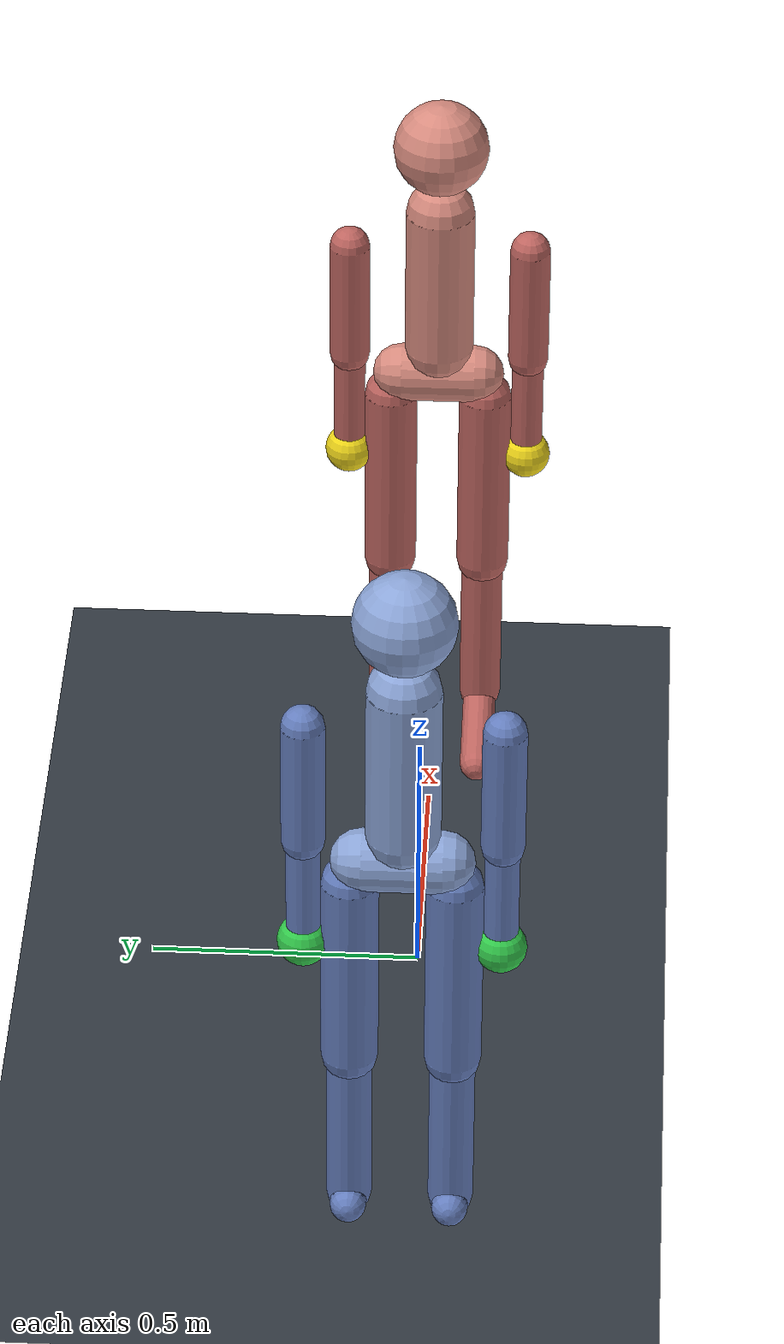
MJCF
<mujoco model="boxing">

  <compiler angle="radian" inertiafromgeom="true"/>

  <option timestep="0.005" gravity="0 0 -9.81" iterations="50" solver="PGS" cone="pyramidal"/>

  <default>
    <joint limited="true" armature="0.02" damping="1.5" stiffness="0"/>
    <geom condim="3" friction="0.8 0.1 0.1" density="1000"/>
    <position ctrllimited="true" ctrlrange="-1 1" kp="200"/>
  </default>

  <asset>
    <texture name="texplane" type="2d" builtin="checker"
             rgb1="0.25 0.28 0.32" rgb2="0.15 0.17 0.20"
             width="512" height="512"/>
    <material name="matplane" texture="texplane" texrepeat="6 6"
              reflectance="0.15" shininess="0.1"/>
    <!-- Fighter 0: blue tones -->
    <material name="mat_b0_skin"  rgba="0.55 0.65 0.85 1"/>
    <material name="mat_b0_limb"  rgba="0.40 0.50 0.75 1"/>
    <material name="mat_b0_fist"  rgba="0.20 0.80 0.30 1"/>
    <!-- Fighter 1: red tones -->
    <material name="mat_b1_skin"  rgba="0.85 0.55 0.50 1"/>
    <material name="mat_b1_limb"  rgba="0.75 0.40 0.38 1"/>
    <material name="mat_b1_fist"  rgba="0.95 0.85 0.10 1"/>
  </asset>

  <worldbody>
    <light directional="true" pos="-2 0 4" dir="1 0 -2" diffuse="0.8 0.8 0.8"/>
    <light directional="true" pos=" 2 0 4" dir="-1 0 -2" diffuse="0.6 0.6 0.7"/>
    <light pos="0 0 3" diffuse="0.4 0.4 0.4" castshadow="false"/>

    <geom name="floor" type="plane" pos="0 0 0" size="8 8 0.1"
          material="matplane" condim="3" friction="0.9 0.1 0.1"/>

    <!--  FIGHTER 0  –  starts at x=-0.75, facing +x           -->
    <body name="b0_pelvis" pos="-0.75 0 0.83">
      <freejoint name="b0_root"/>
      <geom name="b0_pelvis_geom" type="capsule"
            fromto="0 -0.07 0 0 0.07 0" size="0.055"
            material="mat_b0_skin"/>

      <!-- ── TORSO ── -->
      <body name="b0_torso" pos="0 0 0.20">
        <joint name="b0_abdomen_y" type="hinge" axis="0 1 0"
               pos="0 0 -0.10" range="-0.6 0.6"/>
        <geom name="b0_torso_geom" type="capsule"
              fromto="0 0 -0.14 0 0 0.16" size="0.065"
              material="mat_b0_skin"/>

        <!-- HEAD -->
        <body name="b0_head" pos="0 0 0.30">
          <geom name="b0_head_geom" type="sphere" size="0.09"
                material="mat_b0_skin"/>
        </body>

        <!-- ── LEFT ARM (fighter's left = global +y side) ── -->
        <body name="b0_left_upper_arm" pos="0 0.17 0.08">
          <joint name="b0_left_shoulder_x" type="hinge" axis="1 0 0"
                 range="-1.8 1.8"/>
          <joint name="b0_left_shoulder_y" type="hinge" axis="0 1 0"
                 range="-1.8 1.8"/>
          <joint name="b0_left_shoulder_z" type="hinge" axis="0 0 1"
                 range="-1.2 1.2"/>
          <geom name="b0_left_upper_arm_geom" type="capsule"
                fromto="0 0 0 0 0 -0.24" size="0.038"
                material="mat_b0_limb"/>

          <body name="b0_left_lower_arm" pos="0 0 -0.24">
            <joint name="b0_left_elbow" type="hinge" axis="0 1 0"
                   range="-2.6 0.0"/>
            <geom name="b0_left_lower_arm_geom" type="capsule"
                  fromto="0 0 0 0 0 -0.20" size="0.030"
                  material="mat_b0_limb"/>

            <body name="b0_left_fist" pos="0 0 -0.22">
              <geom name="b0_left_fist_geom" type="sphere" size="0.046"
                    material="mat_b0_fist"/>
            </body>
          </body>
        </body>

        <!-- ── RIGHT ARM (fighter's right = global -y side) ── -->
        <body name="b0_right_upper_arm" pos="0 -0.17 0.08">
          <joint name="b0_right_shoulder_x" type="hinge" axis="1 0 0"
                 range="-1.8 1.8"/>
          <joint name="b0_right_shoulder_y" type="hinge" axis="0 1 0"
                 range="-1.8 1.8"/>
          <joint name="b0_right_shoulder_z" type="hinge" axis="0 0 1"
                 range="-1.2 1.2"/>
          <geom name="b0_right_upper_arm_geom" type="capsule"
                fromto="0 0 0 0 0 -0.24" size="0.038"
                material="mat_b0_limb"/>

          <body name="b0_right_lower_arm" pos="0 0 -0.24">
            <joint name="b0_right_elbow" type="hinge" axis="0 1 0"
                   range="-2.6 0.0"/>
            <geom name="b0_right_lower_arm_geom" type="capsule"
                  fromto="0 0 0 0 0 -0.20" size="0.030"
                  material="mat_b0_limb"/>

            <body name="b0_right_fist" pos="0 0 -0.22">
              <geom name="b0_right_fist_geom" type="sphere" size="0.046"
                    material="mat_b0_fist"/>
            </body>
          </body>
        </body>
      </body><!-- /b0_torso -->

      <!-- ── LEFT LEG ── -->
      <body name="b0_left_thigh" pos="0 0.09 -0.05">
        <joint name="b0_left_hip_x" type="hinge" axis="1 0 0"
               range="-0.6 0.6"/>
        <joint name="b0_left_hip_y" type="hinge" axis="0 1 0"
               range="-1.2 0.9"/>
        <joint name="b0_left_hip_z" type="hinge" axis="0 0 1"
               range="-0.6 0.6"/>
        <geom name="b0_left_thigh_geom" type="capsule"
              fromto="0 0 0 0 0 -0.38" size="0.050"
              material="mat_b0_limb"/>

        <body name="b0_left_shin" pos="0 0 -0.38">
          <joint name="b0_left_knee" type="hinge" axis="0 1 0"
                 range="-2.0 0.05"/>
          <geom name="b0_left_shin_geom" type="capsule"
                fromto="0 0 0 0 0 -0.32" size="0.040"
                material="mat_b0_limb"/>

          <body name="b0_left_foot" pos="0 0 -0.32">
            <joint name="b0_left_ankle_x" type="hinge" axis="1 0 0"
                   range="-0.6 0.6"/>
            <joint name="b0_left_ankle_y" type="hinge" axis="0 1 0"
                   range="-0.8 0.6"/>
            <geom name="b0_left_foot_geom" type="capsule"
                  fromto="-0.04 0 0 0.18 0 -0.05" size="0.032"
                  material="mat_b0_limb"/>
          </body>
        </body>
      </body>

      <!-- ── RIGHT LEG ── -->
      <body name="b0_right_thigh" pos="0 -0.09 -0.05">
        <joint name="b0_right_hip_x" type="hinge" axis="1 0 0"
               range="-0.6 0.6"/>
        <joint name="b0_right_hip_y" type="hinge" axis="0 1 0"
               range="-1.2 0.9"/>
        <joint name="b0_right_hip_z" type="hinge" axis="0 0 1"
               range="-0.6 0.6"/>
        <geom name="b0_right_thigh_geom" type="capsule"
              fromto="0 0 0 0 0 -0.38" size="0.050"
              material="mat_b0_limb"/>

        <body name="b0_right_shin" pos="0 0 -0.38">
          <joint name="b0_right_knee" type="hinge" axis="0 1 0"
                 range="-2.0 0.05"/>
          <geom name="b0_right_shin_geom" type="capsule"
                fromto="0 0 0 0 0 -0.32" size="0.040"
                material="mat_b0_limb"/>

          <body name="b0_right_foot" pos="0 0 -0.32">
            <joint name="b0_right_ankle_x" type="hinge" axis="1 0 0"
                   range="-0.6 0.6"/>
            <joint name="b0_right_ankle_y" type="hinge" axis="0 1 0"
                   range="-0.8 0.6"/>
            <geom name="b0_right_foot_geom" type="capsule"
                  fromto="-0.04 0 0 0.18 0 -0.05" size="0.032"
                  material="mat_b0_limb"/>
          </body>
        </body>
      </body>
    </body><!-- /b0_pelvis -->

    <!--  FIGHTER 1  –  starts at x=+0.75, facing -x (180° z) -->
    <body name="b1_pelvis" pos="0.75 0 0.83" euler="0 0 3.14159265">
      <freejoint name="b1_root"/>
      <geom name="b1_pelvis_geom" type="capsule"
            fromto="0 -0.07 0 0 0.07 0" size="0.055"
            material="mat_b1_skin"/>

      <!-- ── TORSO ── -->
      <body name="b1_torso" pos="0 0 0.20">
        <joint name="b1_abdomen_y" type="hinge" axis="0 1 0"
               pos="0 0 -0.10" range="-0.6 0.6"/>
        <geom name="b1_torso_geom" type="capsule"
              fromto="0 0 -0.14 0 0 0.16" size="0.065"
              material="mat_b1_skin"/>

        <!-- HEAD -->
        <body name="b1_head" pos="0 0 0.30">
          <geom name="b1_head_geom" type="sphere" size="0.09"
                material="mat_b1_skin"/>
        </body>

        <!-- ── LEFT ARM ── -->
        <body name="b1_left_upper_arm" pos="0 0.17 0.08">
          <joint name="b1_left_shoulder_x" type="hinge" axis="1 0 0"
                 range="-1.8 1.8"/>
          <joint name="b1_left_shoulder_y" type="hinge" axis="0 1 0"
                 range="-1.8 1.8"/>
          <joint name="b1_left_shoulder_z" type="hinge" axis="0 0 1"
                 range="-1.2 1.2"/>
          <geom name="b1_left_upper_arm_geom" type="capsule"
                fromto="0 0 0 0 0 -0.24" size="0.038"
                material="mat_b1_limb"/>

          <body name="b1_left_lower_arm" pos="0 0 -0.24">
            <joint name="b1_left_elbow" type="hinge" axis="0 1 0"
                   range="-2.6 0.0"/>
            <geom name="b1_left_lower_arm_geom" type="capsule"
                  fromto="0 0 0 0 0 -0.20" size="0.030"
                  material="mat_b1_limb"/>

            <body name="b1_left_fist" pos="0 0 -0.22">
              <geom name="b1_left_fist_geom" type="sphere" size="0.046"
                    material="mat_b1_fist"/>
            </body>
          </body>
        </body>

        <!-- ── RIGHT ARM ── -->
        <body name="b1_right_upper_arm" pos="0 -0.17 0.08">
          <joint name="b1_right_shoulder_x" type="hinge" axis="1 0 0"
                 range="-1.8 1.8"/>
          <joint name="b1_right_shoulder_y" type="hinge" axis="0 1 0"
                 range="-1.8 1.8"/>
          <joint name="b1_right_shoulder_z" type="hinge" axis="0 0 1"
                 range="-1.2 1.2"/>
          <geom name="b1_right_upper_arm_geom" type="capsule"
                fromto="0 0 0 0 0 -0.24" size="0.038"
                material="mat_b1_limb"/>

          <body name="b1_right_lower_arm" pos="0 0 -0.24">
            <joint name="b1_right_elbow" type="hinge" axis="0 1 0"
                   range="-2.6 0.0"/>
            <geom name="b1_right_lower_arm_geom" type="capsule"
                  fromto="0 0 0 0 0 -0.20" size="0.030"
                  material="mat_b1_limb"/>

            <body name="b1_right_fist" pos="0 0 -0.22">
              <geom name="b1_right_fist_geom" type="sphere" size="0.046"
                    material="mat_b1_fist"/>
            </body>
          </body>
        </body>
      </body><!-- /b1_torso -->

      <!-- ── LEFT LEG ── -->
      <body name="b1_left_thigh" pos="0 0.09 -0.05">
        <joint name="b1_left_hip_x" type="hinge" axis="1 0 0"
               range="-0.6 0.6"/>
        <joint name="b1_left_hip_y" type="hinge" axis="0 1 0"
               range="-1.2 0.9"/>
        <joint name="b1_left_hip_z" type="hinge" axis="0 0 1"
               range="-0.6 0.6"/>
        <geom name="b1_left_thigh_geom" type="capsule"
              fromto="0 0 0 0 0 -0.38" size="0.050"
              material="mat_b1_limb"/>

        <body name="b1_left_shin" pos="0 0 -0.38">
          <joint name="b1_left_knee" type="hinge" axis="0 1 0"
                 range="-2.0 0.05"/>
          <geom name="b1_left_shin_geom" type="capsule"
                fromto="0 0 0 0 0 -0.32" size="0.040"
                material="mat_b1_limb"/>

          <body name="b1_left_foot" pos="0 0 -0.32">
            <joint name="b1_left_ankle_x" type="hinge" axis="1 0 0"
                   range="-0.6 0.6"/>
            <joint name="b1_left_ankle_y" type="hinge" axis="0 1 0"
                   range="-0.8 0.6"/>
            <geom name="b1_left_foot_geom" type="capsule"
                  fromto="-0.04 0 0 0.18 0 -0.05" size="0.032"
                  material="mat_b1_limb"/>
          </body>
        </body>
      </body>

      <!-- ── RIGHT LEG ── -->
      <body name="b1_right_thigh" pos="0 -0.09 -0.05">
        <joint name="b1_right_hip_x" type="hinge" axis="1 0 0"
               range="-0.6 0.6"/>
        <joint name="b1_right_hip_y" type="hinge" axis="0 1 0"
               range="-1.2 0.9"/>
        <joint name="b1_right_hip_z" type="hinge" axis="0 0 1"
               range="-0.6 0.6"/>
        <geom name="b1_right_thigh_geom" type="capsule"
              fromto="0 0 0 0 0 -0.38" size="0.050"
              material="mat_b1_limb"/>

        <body name="b1_right_shin" pos="0 0 -0.38">
          <joint name="b1_right_knee" type="hinge" axis="0 1 0"
                 range="-2.0 0.05"/>
          <geom name="b1_right_shin_geom" type="capsule"
                fromto="0 0 0 0 0 -0.32" size="0.040"
                material="mat_b1_limb"/>

          <body name="b1_right_foot" pos="0 0 -0.32">
            <joint name="b1_right_ankle_x" type="hinge" axis="1 0 0"
                   range="-0.6 0.6"/>
            <joint name="b1_right_ankle_y" type="hinge" axis="0 1 0"
                   range="-0.8 0.6"/>
            <geom name="b1_right_foot_geom" type="capsule"
                  fromto="-0.04 0 0 0.18 0 -0.05" size="0.032"
                  material="mat_b1_limb"/>
          </body>
        </body>
      </body>
    </body><!-- /b1_pelvis -->

  </worldbody>

  <!--  ACTUATORS  –  21 per fighter, total 42                      -->
  <!--  Order per fighter (matches action_space dim 0-20):          -->
  <!--   0  abdomen_y                                               -->
  <!--   1  left_hip_x   2  left_hip_y   3  left_hip_z             -->
  <!--   4  left_knee                                               -->
  <!--   5  left_ankle_x 6  left_ankle_y                           -->
  <!--   7  right_hip_x  8  right_hip_y  9  right_hip_z            -->
  <!--  10  right_knee                                              -->
  <!--  11  right_ankle_x 12 right_ankle_y                         -->
  <!--  13  left_shoulder_x 14 left_shoulder_y 15 left_shoulder_z  -->
  <!--  16  left_elbow                                              -->
  <!--  17  right_shoulder_x 18 right_shoulder_y 19 right_shoulder_z-->
  <!--  20  right_elbow                                             -->
  <!--
    Position actuators: ctrl = target joint angle (radians).
    PD controller: torque = kp*(target - current) - kd*velocity.
    ctrl=0 -> zero-angle = upright standing, maintained automatically.
  -->
  <!-- fist-thigh 자기충돌 제거: 초기 자세에서 팔이 다리를 밀어 불안정 유발 방지 -->
  <contact>
    <exclude body1="b0_left_fist"  body2="b0_left_thigh"/>
    <exclude body1="b0_left_fist"  body2="b0_right_thigh"/>
    <exclude body1="b0_right_fist" body2="b0_left_thigh"/>
    <exclude body1="b0_right_fist" body2="b0_right_thigh"/>
    <exclude body1="b1_left_fist"  body2="b1_left_thigh"/>
    <exclude body1="b1_left_fist"  body2="b1_right_thigh"/>
    <exclude body1="b1_right_fist" body2="b1_left_thigh"/>
    <exclude body1="b1_right_fist" body2="b1_right_thigh"/>
  </contact>

  <actuator>
    <!-- Fighter 0 -->
    <position name="b0_abdomen_y"        joint="b0_abdomen_y"        kp="200" ctrlrange="-0.5  0.5"/>
    <position name="b0_left_hip_x"       joint="b0_left_hip_x"       kp="150" ctrlrange="-0.5  0.5"/>
    <position name="b0_left_hip_y"       joint="b0_left_hip_y"       kp="150" ctrlrange="-1.0  0.8"/>
    <position name="b0_left_hip_z"       joint="b0_left_hip_z"       kp="100" ctrlrange="-0.5  0.5"/>
    <position name="b0_left_knee"        joint="b0_left_knee"         kp="150" ctrlrange="-2.0  0.0"/>
    <position name="b0_left_ankle_x"     joint="b0_left_ankle_x"     kp="100" ctrlrange="-0.5  0.5"/>
    <position name="b0_left_ankle_y"     joint="b0_left_ankle_y"     kp="100" ctrlrange="-0.8  0.6"/>
    <position name="b0_right_hip_x"      joint="b0_right_hip_x"      kp="150" ctrlrange="-0.5  0.5"/>
    <position name="b0_right_hip_y"      joint="b0_right_hip_y"      kp="150" ctrlrange="-1.0  0.8"/>
    <position name="b0_right_hip_z"      joint="b0_right_hip_z"      kp="100" ctrlrange="-0.5  0.5"/>
    <position name="b0_right_knee"       joint="b0_right_knee"        kp="150" ctrlrange="-2.0  0.0"/>
    <position name="b0_right_ankle_x"    joint="b0_right_ankle_x"    kp="100" ctrlrange="-0.5  0.5"/>
    <position name="b0_right_ankle_y"    joint="b0_right_ankle_y"    kp="100" ctrlrange="-0.8  0.6"/>
    <position name="b0_left_shoulder_x"  joint="b0_left_shoulder_x"  kp="100" ctrlrange="-1.5  1.5"/>
    <position name="b0_left_shoulder_y"  joint="b0_left_shoulder_y"  kp="100" ctrlrange="-1.5  1.5"/>
    <position name="b0_left_shoulder_z"  joint="b0_left_shoulder_z"  kp="80"  ctrlrange="-1.5  1.5"/>
    <position name="b0_left_elbow"       joint="b0_left_elbow"        kp="80"  ctrlrange="-2.5  0.0"/>
    <position name="b0_right_shoulder_x" joint="b0_right_shoulder_x" kp="100" ctrlrange="-1.5  1.5"/>
    <position name="b0_right_shoulder_y" joint="b0_right_shoulder_y" kp="100" ctrlrange="-1.5  1.5"/>
    <position name="b0_right_shoulder_z" joint="b0_right_shoulder_z" kp="80"  ctrlrange="-1.5  1.5"/>
    <position name="b0_right_elbow"      joint="b0_right_elbow"       kp="80"  ctrlrange="-2.5  0.0"/>
    <!-- Fighter 1 -->
    <position name="b1_abdomen_y"        joint="b1_abdomen_y"        kp="200" ctrlrange="-0.5  0.5"/>
    <position name="b1_left_hip_x"       joint="b1_left_hip_x"       kp="150" ctrlrange="-0.5  0.5"/>
    <position name="b1_left_hip_y"       joint="b1_left_hip_y"       kp="150" ctrlrange="-1.0  0.8"/>
    <position name="b1_left_hip_z"       joint="b1_left_hip_z"       kp="100" ctrlrange="-0.5  0.5"/>
    <position name="b1_left_knee"        joint="b1_left_knee"         kp="150" ctrlrange="-2.0  0.0"/>
    <position name="b1_left_ankle_x"     joint="b1_left_ankle_x"     kp="100" ctrlrange="-0.5  0.5"/>
    <position name="b1_left_ankle_y"     joint="b1_left_ankle_y"     kp="100" ctrlrange="-0.8  0.6"/>
    <position name="b1_right_hip_x"      joint="b1_right_hip_x"      kp="150" ctrlrange="-0.5  0.5"/>
    <position name="b1_right_hip_y"      joint="b1_right_hip_y"      kp="150" ctrlrange="-1.0  0.8"/>
    <position name="b1_right_hip_z"      joint="b1_right_hip_z"      kp="100" ctrlrange="-0.5  0.5"/>
    <position name="b1_right_knee"       joint="b1_right_knee"        kp="150" ctrlrange="-2.0  0.0"/>
    <position name="b1_right_ankle_x"    joint="b1_right_ankle_x"    kp="100" ctrlrange="-0.5  0.5"/>
    <position name="b1_right_ankle_y"    joint="b1_right_ankle_y"    kp="100" ctrlrange="-0.8  0.6"/>
    <position name="b1_left_shoulder_x"  joint="b1_left_shoulder_x"  kp="100" ctrlrange="-1.5  1.5"/>
    <position name="b1_left_shoulder_y"  joint="b1_left_shoulder_y"  kp="100" ctrlrange="-1.5  1.5"/>
    <position name="b1_left_shoulder_z"  joint="b1_left_shoulder_z"  kp="80"  ctrlrange="-1.5  1.5"/>
    <position name="b1_left_elbow"       joint="b1_left_elbow"        kp="80"  ctrlrange="-2.5  0.0"/>
    <position name="b1_right_shoulder_x" joint="b1_right_shoulder_x" kp="100" ctrlrange="-1.5  1.5"/>
    <position name="b1_right_shoulder_y" joint="b1_right_shoulder_y" kp="100" ctrlrange="-1.5  1.5"/>
    <position name="b1_right_shoulder_z" joint="b1_right_shoulder_z" kp="80"  ctrlrange="-1.5  1.5"/>
    <position name="b1_right_elbow"      joint="b1_right_elbow"       kp="80"  ctrlrange="-2.5  0.0"/>
  </actuator>

</mujoco>
